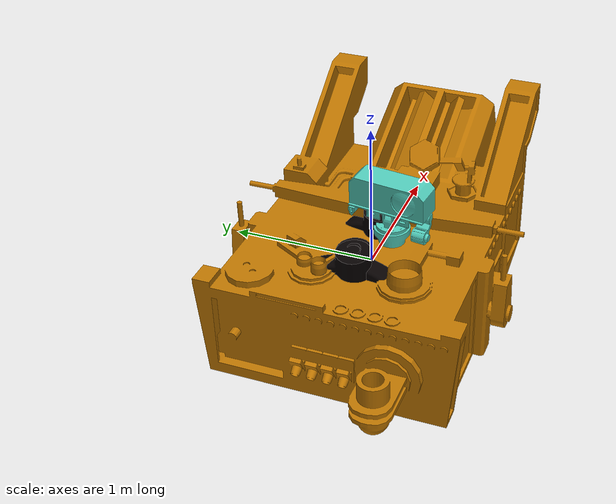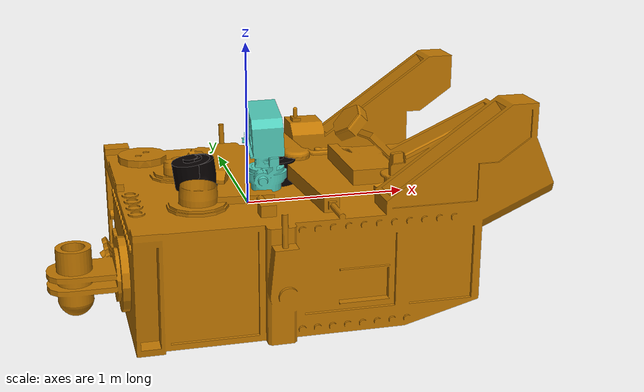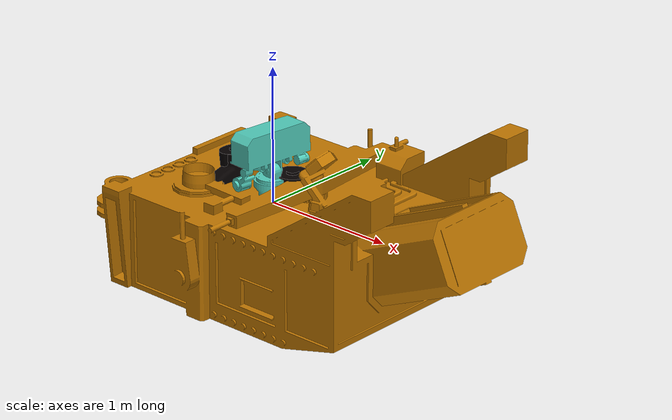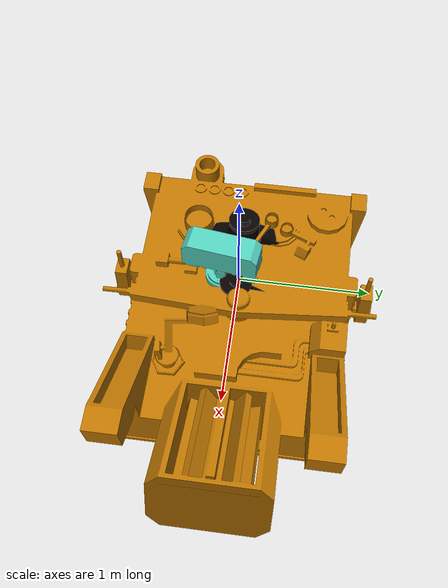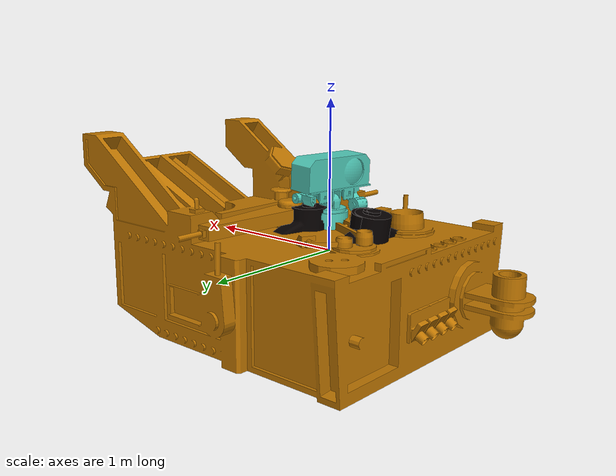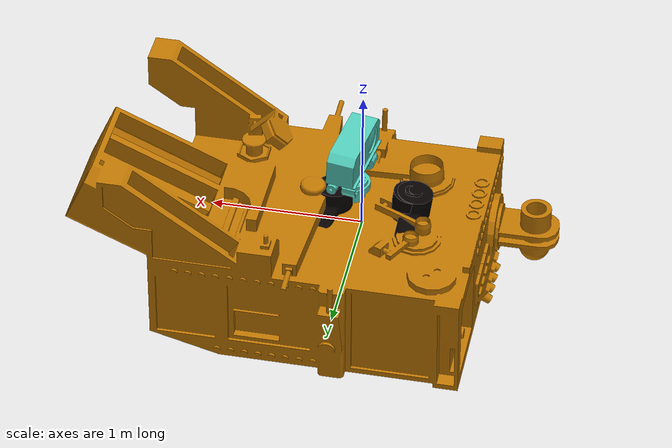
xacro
<robot name="mars_car_tiny_forward" xmlns:xacro="http://ros.org/wiki/xacro">
  <link name="base_footprint"></link>
  <joint name="footprint_joint" type="fixed">
    <origin rpy="0.00000 0.00000 0.000" xyz="0.00000 0.00000 0.00000"/>
    <parent link="base_footprint"/>
    <child link="base_link"/>
    <axis xyz="0.00000 0.00000 1.00000"/>
  </joint>
  <link name="base_link"></link>
  <joint name="base_joint" type="fixed">
    <origin rpy="0.00000 0.00000 0.00000" xyz="0.00000 0.00000 0.00000"/>
    <parent link="base_link"/>
    <child link="Mars6Mars_Rover__Curiosity_1_0__-_whole_body_link"/>
    <axis xyz="0.00000 0.00000 1.00000"/>
  </joint>
  <joint name="arm1" type="revolute">
    <limit lower="-1.57000" upper="1.57000" effort="10000.00000" velocity="5.00000"/>
    <origin rpy="0.00000 0.00000 0.00000" xyz="0.16967 0.06330 -0.05090"/>
    <parent link="Mars6Mars_Rover__Curiosity_1_0__-_whole_body_link"/>
    <child link="Mars6Mars_Rover__Curiosity_1_0__-_15__Arm_Axle-2_link"/>
    <axis xyz="0.00000 0.00000 1.00000"/>
  </joint>
  <joint name="camera1" type="revolute">
    <limit lower="-1.35000" upper="1.35000" effort="10000.00000" velocity="5.00000"/>
    <origin rpy="0.00000 0.00000 0.00000" xyz="0.08930 -0.09970 0.13058"/>
    <parent link="Mars6Mars_Rover__Curiosity_1_0__-_whole_body_link"/>
    <child link="Mars6Mars_Rover__Curiosity_1_0__-_7__Matscam_Holder-1_link"/>
    <axis xyz="0.00000 0.00000 1.00000"/>
  </joint>
  <joint name="left_foot1" type="revolute">
    <limit lower="-0.5000" upper="0.5000" effort="10000.00000" velocity="5.00000"/>
    <origin rpy="0.00000 0.00000 0.00000" xyz="0.22877 0.03703 -0.11721"/>
    <parent link="Mars6Mars_Rover__Curiosity_1_0__-_28_Wheel_connector_1-2_link"/>
    <child link="Mars6Mars_Rover__Curiosity_1_0__-_33_Front_Wheel_Servo_mech_lin"/>
    <axis xyz="0.00000 0.00000 1.00000"/>
  </joint>
  <joint name="left_foot3" type="revolute">
    <limit lower="-0.5000" upper="0.5000" effort="10000.00000" velocity="5.00000"/>
    <origin rpy="0.00000 0.00000 0.00000" xyz="-0.14234 0.03054 -0.04748"/>
    <parent link="Mars6Mars_Rover__Curiosity_1_0__-_29_Wheel_Connector_2-2_link"/>
    <child link="Mars6Mars_Rover__Curiosity_1_0__-_33_Front_Wheel_Servo_mech.001"/>
    <axis xyz="0.00000 0.00000 1.00000"/>
  </joint>
  <joint name="left_hip" type="revolute">
    <limit lower="-0.35000" upper="0.35000" effort="10000.00000" velocity="5.00000"/>
    <origin rpy="0.00000 0.00000 0.00000" xyz="-0.00550 0.17316 -0.03460"/>
    <dynamics damping="10" friction="15"/>
    <parent link="Mars6Mars_Rover__Curiosity_1_0__-_whole_body_link"/>
    <child link="Mars6Mars_Rover__Curiosity_1_0__-_28_Wheel_connector_1-2_link"/>
    <axis xyz="0.00000 1.00000 0.00000"/>
  </joint>
  <joint name="left_knee" type="revolute">
    <limit lower="-0.35000" upper="0.35000" effort="10000.00000" velocity="5.00000"/>
    <origin rpy="0.00000 0.00000 0.00000" xyz="-0.13623 0.00791 -0.03870"/>
    <parent link="Mars6Mars_Rover__Curiosity_1_0__-_28_Wheel_connector_1-2_link"/>
    <child link="Mars6Mars_Rover__Curiosity_1_0__-_29_Wheel_Connector_2-2_link"/>
    <axis xyz="0.00000 1.00000 0.00000"/>
  </joint>
  <joint name="left_wheel1" type="continuous">
    <limit lower="0" upper="0" effort="10000.00000" velocity="5.00000"/>
    <origin rpy="0.00000 0.00000 0.00000" xyz="-0.00238 0.02702 -0.08314"/>
    <parent link="Mars6Mars_Rover__Curiosity_1_0__-_33_Front_Wheel_Servo_mech_lin"/>
    <child link="Mars6Mars_Rover__Curiosity_1_0__-_1__Rover_Wheel_left_1_link"/>
    <axis xyz="0.00000 1.00000 0.00000"/>
  </joint>
  <joint name="left_wheel2" type="continuous">
    <limit lower="0" upper="0" effort="10000.00000" velocity="5.00000"/>
    <origin rpy="0.00000 0.00000 0.00000" xyz="0.12267 0.08478 -0.15679"/>
    <parent link="Mars6Mars_Rover__Curiosity_1_0__-_29_Wheel_Connector_2-2_link"/>
    <child link="Mars6Mars_Rover__Curiosity_1_0__-_1__Rover_Wheel_left_2_link"/>
    <axis xyz="0.00000 1.00000 0.00000"/>
  </joint>
  <joint name="left_wheel3" type="continuous">
    <limit lower="0" upper="0" effort="10000.00000" velocity="5.00000"/>
    <origin rpy="-0.00000 -0.00000 0.00000" xyz="-0.00965 0.02541 -0.08514"/>
    <parent link="Mars6Mars_Rover__Curiosity_1_0__-_33_Front_Wheel_Servo_mech.001"/>
    <child link="Mars6Mars_Rover__Curiosity_1_0__-_1__Rover_Wheel_left_3_link"/>
    <axis xyz="0.00000 1.00000 0.00000"/>
  </joint>
  <joint name="right_foot1" type="revolute">
    <limit lower="-0.5000" upper="0.5000" effort="10000.00000" velocity="5.00000"/>
    <origin rpy="0.00000 0.00000 0.00000" xyz="0.22441 -0.04260 -0.11148"/>
    <parent link="Mars6Mars_Rover__Curiosity_1_0__-_28_Wheel_connector_1-2_001_li"/>
    <child link="Mars6Mars_Rover__Curiosity_1_0__-_33_Front_Wheel_Servo_mech.002"/>
    <axis xyz="0.00000 0.00000 1.00000"/>
  </joint>
  <joint name="right_foot3" type="revolute">
    <limit lower="-0.5000" upper="0.5000" effort="10000.00000" velocity="5.00000"/>
    <origin rpy="0.00000 0.00000 0.00000" xyz="-0.13920 -0.03213 -0.04813"/>
    <parent link="Mars6Mars_Rover__Curiosity_1_0__-_29_Wheel_Connector_2-2_001_li"/>
    <child link="Mars6Mars_Rover__Curiosity_1_0__-_33_Front_Wheel_Servo_mechanis"/>
    <axis xyz="0.00000 0.00000 1.00000"/>
  </joint>
  <joint name="right_hip" type="revolute">
    <limit lower="-0.35000" upper="0.35000" effort="10000.00000" velocity="5.00000"/>
    <origin rpy="0.00000 0.00000 0.00000" xyz="-0.00194 -0.18320 -0.03644"/>
    <dynamics damping="10" friction="15"/>
    <parent link="Mars6Mars_Rover__Curiosity_1_0__-_whole_body_link"/>
    <child link="Mars6Mars_Rover__Curiosity_1_0__-_28_Wheel_connector_1-2_001_li"/>
    <axis xyz="0.00000 1.00000 0.00000"/>
  </joint>
  <joint name="right_knee" type="revolute">
    <limit lower="-0.35000" upper="0.35000" effort="10000.00000" velocity="5.00000"/>
    <origin rpy="0.00000 0.00000 0.00000" xyz="-0.13786 -0.00966 -0.03981"/>
    <parent link="Mars6Mars_Rover__Curiosity_1_0__-_28_Wheel_connector_1-2_001_li"/>
    <child link="Mars6Mars_Rover__Curiosity_1_0__-_29_Wheel_Connector_2-2_001_li"/>
    <axis xyz="0.00000 1.00000 0.00000"/>
  </joint>
  <joint name="right_wheel1" type="continuous">
    <limit lower="0" upper="0" effort="10000.00000" velocity="5.00000"/>
    <origin rpy="0.00000 0.00000 0.00000" xyz="0.00483 -0.02175 -0.08672"/>
    <parent link="Mars6Mars_Rover__Curiosity_1_0__-_33_Front_Wheel_Servo_mech.002"/>
    <child link="Mars6Mars_Rover__Curiosity_1_0__-_1__Rover_Wheel_right_1_link"/>
    <axis xyz="0.00000 1.00000 0.00000"/>
  </joint>
  <joint name="right_wheel2" type="continuous">
    <limit lower="0" upper="0" effort="10000.00000" velocity="5.00000"/>
    <origin rpy="0.00000 0.00000 0.00000" xyz="0.12019 -0.08425 -0.15146"/>
    <parent link="Mars6Mars_Rover__Curiosity_1_0__-_29_Wheel_Connector_2-2_001_li"/>
    <child link="Mars6Mars_Rover__Curiosity_1_0__-_1__Rover_Wheel_right_2_link"/>
    <axis xyz="0.00000 1.00000 0.00000"/>
  </joint>
  <joint name="right_wheel3" type="continuous">
    <limit lower="0" upper="0" effort="10000.00000" velocity="5.00000"/>
    <origin rpy="0.00000 0.00000 0.00000" xyz="-0.01339 -0.02340 -0.08101"/>
    <parent link="Mars6Mars_Rover__Curiosity_1_0__-_33_Front_Wheel_Servo_mechanis"/>
    <child link="Mars6Mars_Rover__Curiosity_1_0__-_1__Rover_Wheel_right_3_link"/>
    <axis xyz="0.00000 1.00000 0.00000"/>
  </joint>
  <link name="Mars6Mars_Rover__Curiosity_1_0__-_15__Arm_Axle-2_link">
    <inertial>
      <inertia ixx="2.17409" ixy="-2.92298" ixz="2.34282" iyy="8.93345" iyz="0.85256" izz="9.45950"/>
      <origin rpy="0.00000 0.00000 0.00000" xyz="0.28922 0.07667 0.16175"/>
      <mass value="10.00000"/>
    </inertial>
  </link>
  <link name="Mars6Mars_Rover__Curiosity_1_0__-_1__Rover_Wheel_left_1_link">
    <collision name="Mars6Mars_Rover__Curiosity_1_0__-_1__Rover_Wheel_left_1_collisi">
      <origin rpy="1.78342 1.57080 0.17772" xyz="0.00027 -0.00215 0.00055"/>
      <geometry>
        <cylinder radius="0.07637" length="0.11192"/>
      </geometry>
    </collision>
    <inertial>
      <inertia ixx="0.84373" ixy="0.04721" ixz="0.00007" iyy="1.06580" iyz="0.00014" izz="0.83388"/>
      <origin rpy="0.00000 0.00000 0.00000" xyz="0.00009 -0.00144 0.00018"/>
      <mass value="10.00000"/>
    </inertial>
    <visual name="Mars6Mars_Rover__Curiosity_1_0__-_1__Rover_Wheel_left_1">
      <origin rpy="0.00000 0.00000 0.00000" xyz="0.00000 0.00000 0.00000"/>
      <material name="材质.002"/>
      <geometry>
        <mesh filename="file://$(find marscar_gazebo_ros2)/models/mars_car_tiny_forward/meshes/dae/Mars6Mars_Rover__Curiosity_1_0__-_1__Rover_Wheel_left_1.001.dae" scale="1.00000 1.00000 1.00000"/>
      </geometry>
    </visual>
  </link>
  <link name="Mars6Mars_Rover__Curiosity_1_0__-_1__Rover_Wheel_left_2_link">
    <collision name="Mars6Mars_Rover__Curiosity_1_0__-_1__Rover_Wheel_left_2_collisi">
      <origin rpy="1.57080 0.00000 -3.14159" xyz="0.00055 -0.00203 0.00047"/>
      <geometry>
        <cylinder radius="0.07676" length="0.11412"/>
      </geometry>
    </collision>
    <inertial>
      <inertia ixx="0.83389" ixy="0.00020" ixz="0.00006" iyy="1.07542" iyz="0.00014" izz="0.83410"/>
      <origin rpy="0.00000 0.00000 0.00000" xyz="0.00021 -0.00143 -0.00006"/>
      <mass value="10.00000"/>
    </inertial>
    <visual name="Mars6Mars_Rover__Curiosity_1_0__-_1__Rover_Wheel_left_2">
      <origin rpy="0.00000 0.00000 0.00000" xyz="0.00000 0.00000 0.00000"/>
      <material name="材质.002"/>
      <geometry>
        <mesh filename="file://$(find marscar_gazebo_ros2)/models/mars_car_tiny_forward/meshes/dae/Mars6Mars_Rover__Curiosity_1_0__-_1__Rover_Wheel_left_2.001.dae" scale="1.00000 1.00000 1.00000"/>
      </geometry>
    </visual>
  </link>
  <link name="Mars6Mars_Rover__Curiosity_1_0__-_1__Rover_Wheel_left_3_link">
    <collision name="Mars6Mars_Rover__Curiosity_1_0__-_1__Rover_Wheel_left_3_collisi">
      <origin rpy="1.57080 -0.00000 -3.14159" xyz="0.00059 -0.00203 0.00041"/>
      <geometry>
        <cylinder radius="0.07656" length="0.11422"/>
      </geometry>
    </collision>
    <inertial>
      <inertia ixx="0.83389" ixy="-0.00041" ixz="0.00006" iyy="1.07542" iyz="0.00006" izz="0.83410"/>
      <origin rpy="0.00000 0.00000 0.00000" xyz="0.00022 -0.00143 -0.00005"/>
      <mass value="10.00000"/>
    </inertial>
    <visual name="Mars6Mars_Rover__Curiosity_1_0__-_1__Rover_Wheel_left_3">
      <origin rpy="0.00000 0.00000 -0.00000" xyz="0.00000 -0.00000 0.00000"/>
      <material name="材质.002"/>
      <geometry>
        <mesh filename="file://$(find marscar_gazebo_ros2)/models/mars_car_tiny_forward/meshes/dae/Mars6Mars_Rover__Curiosity_1_0__-_1__Rover_Wheel_left_3.001.dae" scale="1.00000 1.00000 1.00000"/>
      </geometry>
    </visual>
  </link>
  <link name="Mars6Mars_Rover__Curiosity_1_0__-_1__Rover_Wheel_right_1_link">
    <collision name="Mars6Mars_Rover__Curiosity_1_0__-_1__Rover_Wheel_right_1_collis">
      <origin rpy="-1.57093 1.52197 0.00338" xyz="-0.00066 0.00193 0.00038"/>
      <geometry>
        <cylinder radius="0.07703" length="0.11165"/>
      </geometry>
    </collision>
    <inertial>
      <inertia ixx="0.84640" ixy="-0.05351" ixz="-0.00002" iyy="1.06292" iyz="-0.00015" izz="0.83410"/>
      <origin rpy="0.00000 0.00000 0.00000" xyz="-0.00023 0.00143 -0.00006"/>
      <mass value="10.00000"/>
    </inertial>
    <visual name="Mars6Mars_Rover__Curiosity_1_0__-_1__Rover_Wheel_right_1">
      <origin rpy="0.00000 0.00000 0.00000" xyz="-0.00023 0.00143 -0.00006"/>
      <material name="材质.002"/>
      <geometry>
        <mesh filename="file://$(find marscar_gazebo_ros2)/models/mars_car_tiny_forward/meshes/dae/Mars6Mars_Rover__Curiosity_1_0__-_1__Rover_Wheel_right_1.001.dae" scale="1.00000 1.00000 1.00000"/>
      </geometry>
    </visual>
  </link>
  <link name="Mars6Mars_Rover__Curiosity_1_0__-_1__Rover_Wheel_right_2_link">
    <collision name="Mars6Mars_Rover__Curiosity_1_0__-_1__Rover_Wheel_right_2_collis">
      <origin rpy="1.57080 0.00000 -3.14159" xyz="-0.00061 0.00203 0.00040"/>
      <geometry>
        <cylinder radius="0.07612" length="0.11320"/>
      </geometry>
    </collision>
    <inertial>
      <inertia ixx="0.83389" ixy="0.00020" ixz="-0.00006" iyy="1.07542" iyz="-0.00014" izz="0.83410"/>
      <origin rpy="0.00000 0.00000 0.00000" xyz="-0.00021 0.00143 -0.00005"/>
      <mass value="10.00000"/>
    </inertial>
    <visual name="Mars6Mars_Rover__Curiosity_1_0__-_1__Rover_Wheel_right_2">
      <origin rpy="0.00000 0.00000 0.00000" xyz="0.00000 0.00000 0.00000"/>
      <material name="材质.002"/>
      <geometry>
        <mesh filename="file://$(find marscar_gazebo_ros2)/models/mars_car_tiny_forward/meshes/dae/Mars6Mars_Rover__Curiosity_1_0__-_1__Rover_Wheel_right_2.001.dae" scale="1.00000 1.00000 1.00000"/>
      </geometry>
    </visual>
  </link>
  <link name="Mars6Mars_Rover__Curiosity_1_0__-_1__Rover_Wheel_right_3_link">
    <collision name="Mars6Mars_Rover__Curiosity_1_0__-_1__Rover_Wheel_right_3_collis">
      <origin rpy="1.58277 0.03499 -3.13636" xyz="0.00056 0.00193 -0.00063"/>
      <geometry>
        <cylinder radius="0.07790" length="0.11913"/>
      </geometry>
    </collision>
    <inertial>
      <inertia ixx="0.84176" ixy="0.04281" ixz="0.00027" iyy="1.06756" iyz="0.00194" izz="0.83410"/>
      <origin rpy="0.00000 0.00000 0.00000" xyz="-0.00026 0.00143 -0.00004"/>
      <mass value="10.00000"/>
    </inertial>
    <visual name="Mars6Mars_Rover__Curiosity_1_0__-_1__Rover_Wheel_right_3">
      <origin rpy="0.00000 0.00000 0.00000" xyz="0.00000 0.00000 0.00000"/>
      <material name="材质.002"/>
      <geometry>
        <mesh filename="file://$(find marscar_gazebo_ros2)/models/mars_car_tiny_forward/meshes/dae/Mars6Mars_Rover__Curiosity_1_0__-_1__Rover_Wheel_right_3.001.dae" scale="1.00000 1.00000 1.00000"/>
      </geometry>
    </visual>
  </link>
  <link name="Mars6Mars_Rover__Curiosity_1_0__-_28_Wheel_connector_1-2_001_li">
    <inertial>
      <inertia ixx="0.51594" ixy="0.80364" ixz="-0.82913" iyy="5.73908" iyz="0.18832" izz="5.64320"/>
      <origin rpy="0.00000 0.00000 0.00000" xyz="0.10977 -0.00456 -0.04567"/>
      <mass value="10.00000"/>
    </inertial>
    <visual name="Mars6Mars_Rover__Curiosity_1_0__-_28_Wheel_connector_1-2_001">
      <origin rpy="0.00000 0.00000 0.00000" xyz="0.08989 0.00000 -0.03121"/>
      <material name="材质.007"/>
      <geometry>
        <mesh filename="file://$(find marscar_gazebo_ros2)/models/mars_car_tiny_forward/meshes/dae/Mars6Mars_Rover__Curiosity_1_0__-_28_Wheel_connector_1-2_00.dae" scale="1.00000 1.00000 1.00000"/>
      </geometry>
    </visual>
  </link>
  <link name="Mars6Mars_Rover__Curiosity_1_0__-_28_Wheel_connector_1-2_link">
    <inertial>
      <inertia ixx="0.51594" ixy="-0.80365" ixz="-0.82913" iyy="5.73908" iyz="-0.18832" izz="5.64320"/>
      <origin rpy="0.00000 0.00000 0.00000" xyz="0.11332 0.00456 -0.04751"/>
      <mass value="10.00000"/>
    </inertial>
    <visual name="Mars6Mars_Rover__Curiosity_1_0__-_28_Wheel_connector_1-2">
      <origin rpy="0.00000 0.00000 0.00000" xyz="0.09345 0.00000 -0.03304"/>
      <material name="材质.007"/>
      <geometry>
        <mesh filename="file://$(find marscar_gazebo_ros2)/models/mars_car_tiny_forward/meshes/dae/Mars6Mars_Rover__Curiosity_1_0__-_28_Wheel_connector_1-2.001.dae" scale="1.00000 1.00000 1.00000"/>
      </geometry>
    </visual>
  </link>
  <link name="Mars6Mars_Rover__Curiosity_1_0__-_29_Wheel_Connector_2-2_001_li">
    <inertial>
      <inertia ixx="2.00747" ixy="0.01940" ixz="-2.62175" iyy="6.13139" iyz="0.12452" izz="4.43220"/>
      <origin rpy="0.00000 0.00000 0.00000" xyz="0.04148 -0.01770 -0.09031"/>
      <mass value="10.00000"/>
    </inertial>
    <visual name="Mars6Mars_Rover__Curiosity_1_0__-_29_Wheel_Connector_2-2_001">
      <origin rpy="0.00000 0.00000 0.00000" xyz="-0.02351 -0.01970 -0.04864"/>
      <material name="材质.007"/>
      <geometry>
        <mesh filename="file://$(find marscar_gazebo_ros2)/models/mars_car_tiny_forward/meshes/dae/Mars6Mars_Rover__Curiosity_1_0__-_29_Wheel_Connector_2-2_00.dae" scale="1.00000 1.00000 1.00000"/>
      </geometry>
    </visual>
  </link>
  <link name="Mars6Mars_Rover__Curiosity_1_0__-_29_Wheel_Connector_2-2_link">
    <inertial>
      <inertia ixx="0.20075" ixy="-0.00194" ixz="-0.26217" iyy="0.61314" iyz="-0.01245" izz="0.44322"/>
      <origin rpy="0.00000 0.00000 0.00000" xyz="0.04341 0.01950 -0.09326"/>
      <mass value="1.00000"/>
    </inertial>
    <visual name="Mars6Mars_Rover__Curiosity_1_0__-_29_Wheel_Connector_2-2">
      <origin rpy="0.00000 0.00000 0.00000" xyz="-0.02159 0.02151 -0.05158"/>
      <material name="材质.007"/>
      <geometry>
        <mesh filename="file://$(find marscar_gazebo_ros2)/models/mars_car_tiny_forward/meshes/dae/Mars6Mars_Rover__Curiosity_1_0__-_29_Wheel_Connector_2-2.001.dae" scale="1.00000 1.00000 1.00000"/>
      </geometry>
    </visual>
  </link>
  <link name="Mars6Mars_Rover__Curiosity_1_0__-_33_Front_Wheel_Servo_mech.001">
    <inertial>
      <inertia ixx="0.07397" ixy="-0.00132" ixz="0.00607" iyy="0.05406" iyz="0.01050" izz="0.02807"/>
      <origin rpy="0.00000 0.00000 0.00000" xyz="-0.00607 -0.02996 -0.06059"/>
      <mass value="1.00000"/>
    </inertial>
    <visual name="Mars6Mars_Rover__Curiosity_1_0__-_33_Front_Wheel_Servo_mech.004">
      <origin rpy="0.00000 0.00000 0.00000" xyz="-0.00523 -0.02934 -0.05449"/>
      <material name="材质.007"/>
      <geometry>
        <mesh filename="file://$(find marscar_gazebo_ros2)/models/mars_car_tiny_forward/meshes/dae/Mars6Mars_Rover__Curiosity_1_0__-_33_Front_Wheel_Servo_mech.004.dae" scale="1.00000 1.00000 1.00000"/>
      </geometry>
    </visual>
  </link>
  <link name="Mars6Mars_Rover__Curiosity_1_0__-_33_Front_Wheel_Servo_mech.002">
    <inertial>
      <inertia ixx="0.07368" ixy="0.00460" ixz="0.00242" iyy="0.05514" iyz="-0.01030" izz="0.02728"/>
      <origin rpy="0.00000 0.00000 0.00000" xyz="-0.00802 0.03211 -0.06195"/>
      <mass value="1.00000"/>
    </inertial>
    <visual name="Mars6Mars_Rover__Curiosity_1_0__-_33_Front_Wheel_Servo_mech.003">
      <origin rpy="0.00000 0.00000 0.00000" xyz="-0.00793 0.03150 -0.05579"/>
      <material name="材质.007"/>
      <geometry>
        <mesh filename="file://$(find marscar_gazebo_ros2)/models/mars_car_tiny_forward/meshes/dae/Mars6Mars_Rover__Curiosity_1_0__-_33_Front_Wheel_Servo_mech.003.dae" scale="1.00000 1.00000 1.00000"/>
      </geometry>
    </visual>
  </link>
  <link name="Mars6Mars_Rover__Curiosity_1_0__-_33_Front_Wheel_Servo_mech_lin">
    <inertial>
      <inertia ixx="0.07391" ixy="-0.00409" ixz="0.00237" iyy="0.05488" iyz="0.01035" izz="0.02731"/>
      <origin rpy="0.00000 0.00000 0.00000" xyz="-0.00371 -0.02830 -0.05807"/>
      <mass value="1.00000"/>
    </inertial>
    <visual name="Mars6Mars_Rover__Curiosity_1_0__-_33_Front_Wheel_Servo_mech">
      <origin rpy="0.00000 0.00000 0.00000" xyz="-0.00362 -0.02768 -0.05191"/>
      <material name="材质.007"/>
      <geometry>
        <mesh filename="file://$(find marscar_gazebo_ros2)/models/mars_car_tiny_forward/meshes/dae/Mars6Mars_Rover__Curiosity_1_0__-_33_Front_Wheel_Servo_mech.005.dae" scale="1.00000 1.00000 1.00000"/>
      </geometry>
    </visual>
  </link>
  <link name="Mars6Mars_Rover__Curiosity_1_0__-_33_Front_Wheel_Servo_mechanis">
    <inertial>
      <inertia ixx="0.07411" ixy="-0.00097" ixz="0.00443" iyy="0.05400" iyz="-0.01110" izz="0.02799"/>
      <origin rpy="0.00000 0.00000 0.00000" xyz="-0.01215 0.03223 -0.05659"/>
      <mass value="1.00000"/>
    </inertial>
    <visual name="Mars6Mars_Rover__Curiosity_1_0__-_33_Front_Wheel_Servo_mech.005">
      <origin rpy="0.00000 0.00000 0.00000" xyz="-0.01140 0.03168 -0.05047"/>
      <material name="材质.007"/>
      <geometry>
        <mesh filename="file://$(find marscar_gazebo_ros2)/models/mars_car_tiny_forward/meshes/dae/Mars6Mars_Rover__Curiosity_1_0__-_33_Front_Wheel_Servo_mech.006.dae" scale="1.00000 1.00000 1.00000"/>
      </geometry>
    </visual>
  </link>
  <link name="Mars6Mars_Rover__Curiosity_1_0__-_7__Matscam_Holder-1_link">
    <inertial>
      <inertia ixx="1.26368" ixy="-0.01591" ixz="0.01988" iyy="1.18487" iyz="0.00716" izz="0.13027"/>
      <origin rpy="0.00000 0.00000 0.00000" xyz="0.00007 0.00182 0.00749"/>
      <mass value="10.00000"/>
    </inertial>
    <visual name="Mars6Mars_Rover__Curiosity_1_0__-_7__Matscam_Holder-1">
      <origin rpy="0.00000 0.00000 0.00000" xyz="0.00000 0.00000 0.00000"/>
      <material name="材质.003"/>
      <geometry>
        <mesh filename="file://$(find marscar_gazebo_ros2)/models/mars_car_tiny_forward/meshes/dae/Mars6Mars_Rover__Curiosity_1_0__-_7__Matscam_Holder-1.001.dae" scale="1.00000 1.00000 1.00000"/>
      </geometry>
    </visual>
  </link>
  <link name="Mars6Mars_Rover__Curiosity_1_0__-_whole_body_link">
    <collision name="Mars6Mars_Rover__Curiosity_1_0__-_whole_body_collision">
      <origin rpy="0.00000 0.00000 0.00000" xyz="0.05103 0.00563 0.01153"/>
      <geometry>
        <box size="0.29034 0.31436 0.20157"/>
      </geometry>
    </collision>
    <inertial>
      <inertia ixx="26.60509" ixy="-4.08525" ixz="-6.14886" iyy="77.50541" iyz="0.05389" izz="90.02675"/>
      <origin rpy="0.00000 0.00000 0.00000" xyz="-0.06982 -0.00313 -0.00695"/>
      <mass value="20.00000"/>
    </inertial>
    <visual name="Mars6Mars_Rover__Curiosity_1_0__-_whole_body">
      <origin rpy="0.00000 0.00000 0.00000" xyz="0.00000 0.00000 0.00000"/>
      <material name="Material.002"/>
      <geometry>
        <mesh filename="file://$(find marscar_gazebo_ros2)/models/mars_car_tiny_forward/meshes/dae/Mars6Mars_Rover__Curiosity_1_0__-_whole_body.001.dae" scale="1.00000 1.00000 1.00000"/>
      </geometry>
    </visual>
  </link>
  <material name="Material.002">
    <color rgba="0.74902 0.46275 0.00392 1.00000"/>
  </material>
  <material name="材质.002">
    <color rgba="0.00000 0.00000 0.00784 1.00000"/>
  </material>
  <material name="材质.003">
    <color rgba="0.31765 0.80000 0.72941 1.00000"/>
  </material>
  <material name="材质.007">
    <color rgba="0.01961 0.00000 0.00000 1.00000"/>
  </material>
  <ros2_control name="GazeboSystem" type="system">
    <hardware>
      <plugin>gazebo_ros2_control/GazeboSystem</plugin>
    </hardware>
    <joint name="arm1">
      <command_interface name="effort">
        <param name="min">-1000</param>
        <param name="max">1000</param>
      </command_interface>
      <state_interface name="position">
        <param name="initial_value">1.0</param>
      </state_interface>
      <state_interface name="velocity"/>
      <state_interface name="effort"/>
    </joint>

    <joint name="camera1">
      <command_interface name="position">
        <param name="min">-10</param>
        <param name="max">10</param>
      </command_interface>
      <state_interface name="position"/>
      <state_interface name="velocity"/>
      <state_interface name="effort"/>
    </joint>
    <joint name="left_foot1">
      <command_interface name="position">
        <param name="min">-1</param>
        <param name="max">1</param>
      </command_interface>
      <state_interface name="position">
        <param name="initial_value">1.0</param>
      </state_interface>
      <state_interface name="velocity"/>
      <state_interface name="effort"/>
    </joint>

    <joint name="left_foot3">
      <command_interface name="position">
        <param name="min">-1</param>
        <param name="max">1</param>
      </command_interface>
      <state_interface name="position"/>
      <state_interface name="velocity"/>
      <state_interface name="effort"/>
    </joint>
    <joint name="left_hip">
      <command_interface name="effort">
        <param name="min">-1000</param>
        <param name="max">1000</param>
      </command_interface>
      <state_interface name="position">
      </state_interface>
      <state_interface name="velocity"/>
      <state_interface name="effort"/>
    </joint>
    <joint name="right_foot1">
      <command_interface name="position">
        <param name="min">-1</param>
        <param name="max">1</param>
      </command_interface>
      <state_interface name="position">
        <param name="initial_value">1.0</param>
      </state_interface>
      <state_interface name="velocity"/>
      <state_interface name="effort"/>
    </joint>

    <joint name="right_foot3">
      <command_interface name="position">
        <param name="min">-1</param>
        <param name="max">1</param>
      </command_interface>
      <state_interface name="position"/>
      <state_interface name="velocity"/>
      <state_interface name="effort"/>
    </joint>
    <joint name="right_hip">
      <command_interface name="effort">
        <param name="min">-1000</param>
        <param name="max">1000</param>
      </command_interface>
      <state_interface name="position"/>
      <state_interface name="velocity"/>
      <state_interface name="effort"/>
    </joint>
    <joint name="right_wheel1">
      <command_interface name="velocity">
        <param name="min">-1000</param>
        <param name="max">1000</param>
      </command_interface>
      <state_interface name="position"/>
      <state_interface name="velocity"/>
      <state_interface name="effort"/>
    </joint>
    <joint name="right_wheel2">
      <command_interface name="velocity">
        <param name="min">-1000</param>
        <param name="max">1000</param>
      </command_interface>
      <state_interface name="position"/>
      <state_interface name="velocity"/>
      <state_interface name="effort"/>
    </joint>
    <joint name="right_wheel3">
      <command_interface name="velocity">
        <param name="min">-1000</param>
        <param name="max">1000</param>
      </command_interface>
      <state_interface name="position"/>
      <state_interface name="velocity"/>
      <state_interface name="effort"/>
    </joint>
    <joint name="left_wheel1">
      <command_interface name="velocity">
        <param name="min">-1000</param>
        <param name="max">1000</param>
      </command_interface>
      <state_interface name="position"/>
      <state_interface name="velocity"/>
      <state_interface name="effort"/>
    </joint>
    <joint name="left_wheel2">
      <command_interface name="velocity">
        <param name="min">-1000</param>
        <param name="max">1000</param>
      </command_interface>
      <state_interface name="position"/>
      <state_interface name="velocity"/>
      <state_interface name="effort"/>
    </joint>
    <joint name="left_wheel3">
      <command_interface name="velocity">
        <param name="min">-1000</param>
        <param name="max">1000</param>
      </command_interface>
      <state_interface name="position"/>
      <state_interface name="velocity"/>
      <state_interface name="effort"/>
    </joint>
    <joint name="left_knee">
      <command_interface name="effort">
        <param name="min">-1000</param>
        <param name="max">1000</param>
      </command_interface>
      <state_interface name="position"/>
      <state_interface name="velocity"/>
      <state_interface name="effort"/>
    </joint>
    <joint name="right_knee">
      <command_interface name="effort">
        <param name="min">-1000</param>
        <param name="max">1000</param>
      </command_interface>
      <state_interface name="position"/>
      <state_interface name="velocity"/>
      <state_interface name="effort"/>
    </joint>
  </ros2_control>
  <gazebo>

  </gazebo>
  <gazebo>
    <plugin filename="libgazebo_ros2_control.so" name="marscar_gazebo_ros2_control">
      <parameters>$(find marscar_gazebo_ros2)/config/mars_car_controller_effort.yaml</parameters>
    </plugin>

  </gazebo>

</robot>
